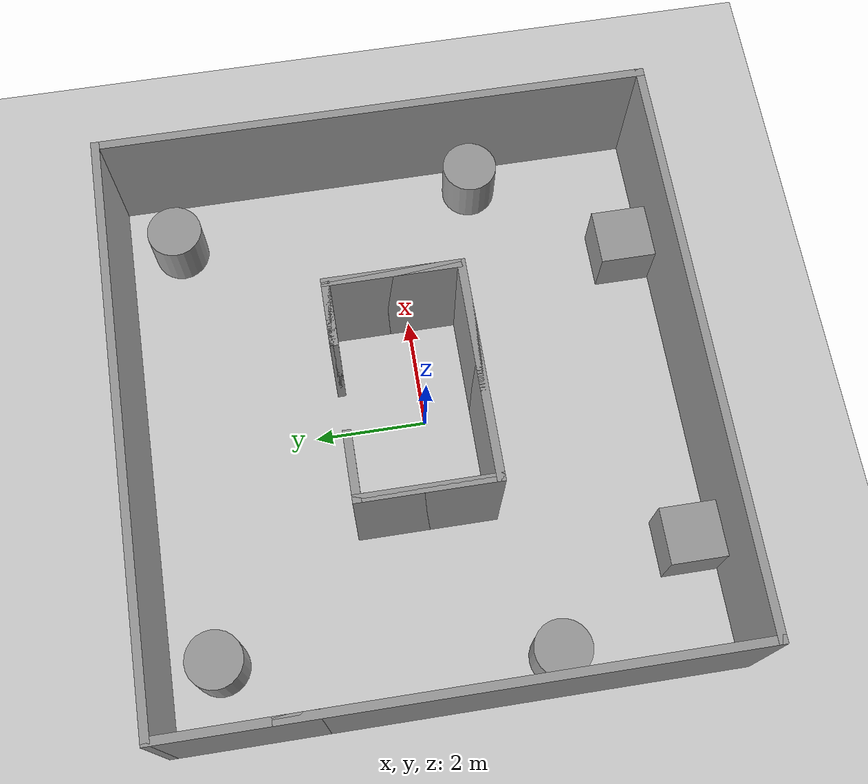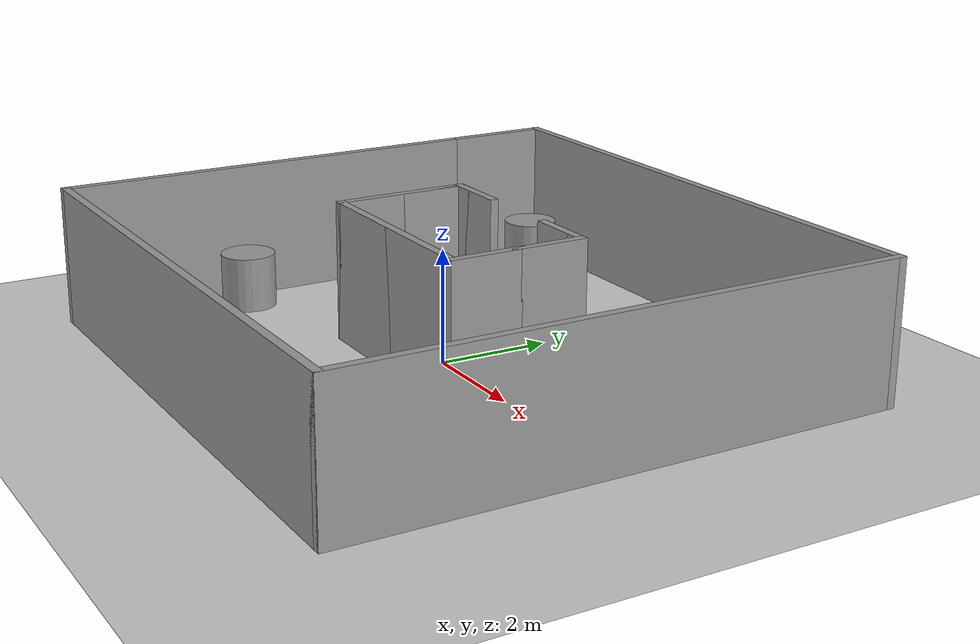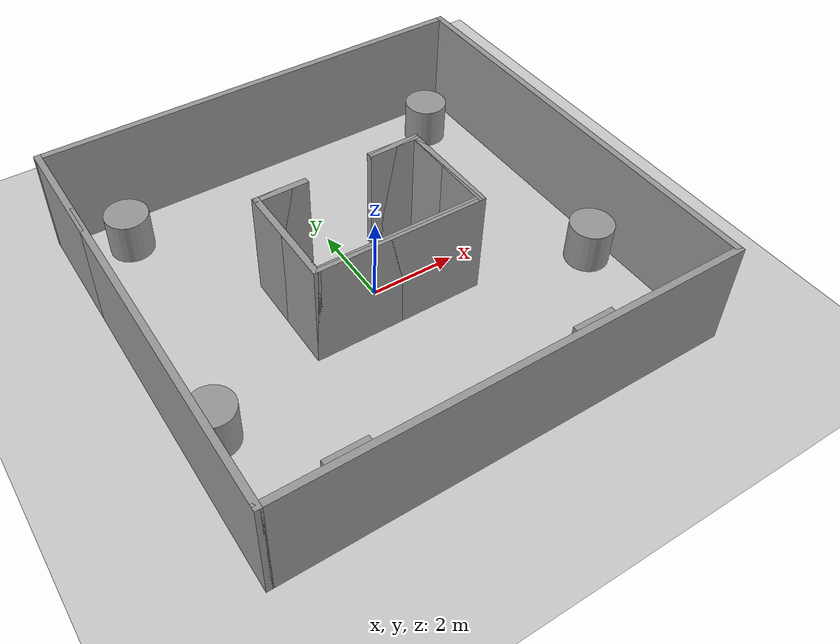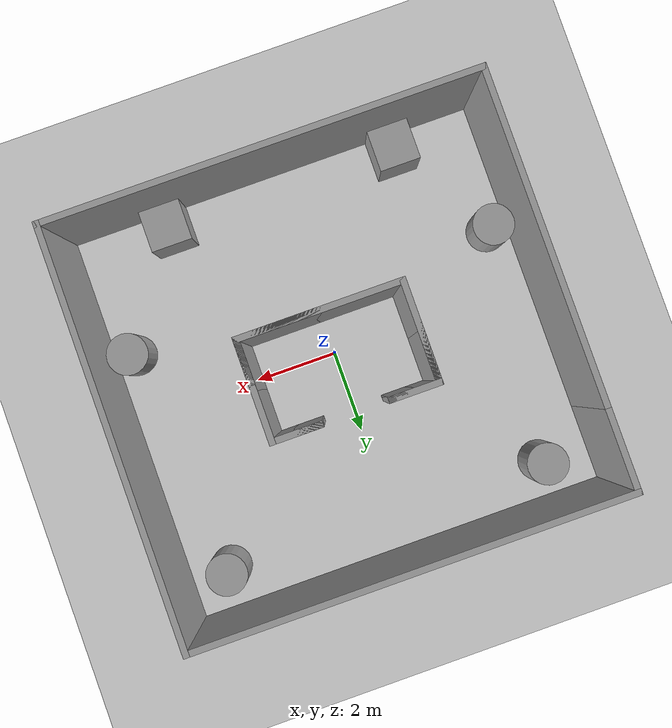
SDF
<sdf version="1.7">
 <world name="default">
  <light name="sun" type="directional">
   <pose>0 0 10 0 -0 0</pose>
   <diffuse>0.8 0.8 0.8 1</diffuse>
   <specular>0.2 0.2 0.2 1</specular>
   <attenuation>
    <range>1000</range>
    <constant>0.9</constant>
    <linear>0.01</linear>
    <quadratic>0.001</quadratic>
   </attenuation>
   <direction>-0.5 0.1 -0.9</direction>
   <spot><inner_angle>0</inner_angle><outer_angle>0</outer_angle><falloff>0</falloff></spot>
  </light>
  <model name="ground_plane">
   <static>1</static>
   <link name="link">
    <collision name="collision">
     <geometry><plane><normal>0 0 1</normal><size>100 100</size></plane></geometry>
     <surface>
      <contact><collide_bitmask>65535</collide_bitmask></contact>
      <friction><ode><mu>100</mu><mu2>50</mu2></ode></friction>
     </surface>
    </collision>
    <visual name="visual">
     <cast_shadows>0</cast_shadows>
     <geometry><plane><normal>0 0 1</normal><size>100 100</size></plane></geometry>
     <material>
      <script><uri>file://media/materials/scripts/gazebo.material</uri><name>Gazebo/Grey</name></script>
     </material>
    </visual>
   </link>
  </model>
  <gravity>0 0 -9.8</gravity>
  <magnetic_field>6e-06 2.3e-05 -4.2e-05</magnetic_field>
  <atmosphere type="adiabatic"/>
  <physics type="ode">
   <max_step_size>0.001</max_step_size>
   <real_time_factor>1</real_time_factor>
   <real_time_update_rate>1000</real_time_update_rate>
  </physics>
  <scene><ambient>0.4 0.4 0.4 1</ambient><background>0.7 0.7 0.7 1</background><shadows>1</shadows></scene>
  <spherical_coordinates>
   <surface_model>EARTH_WGS84</surface_model>
   <latitude_deg>0</latitude_deg>
   <longitude_deg>0</longitude_deg>
   <elevation>0</elevation>
   <heading_deg>0</heading_deg>
  </spherical_coordinates>
  <model name="multi10x10">
   <pose>0.02298 0.181963 0 0 -0 0</pose>
   <link name="Wall_1">
    <collision name="Wall_1_Collision">
     <geometry><box><size>8 0.15 2.5</size></box></geometry>
     <pose>0 0 1.25 0 -0 0</pose>
    </collision>
    <visual name="Wall_1_Visual">
     <pose>0 0 1.25 0 -0 0</pose>
     <geometry><box><size>8 0.15 2.5</size></box></geometry>
     <material>
      <script><uri>file://media/materials/scripts/gazebo.material</uri><name>Gazebo/Grey</name></script>
      <ambient>1 1 1 1</ambient>
     </material>
     <meta><layer>0</layer></meta>
    </visual>
    <pose>-5.175 -1 0 0 -0 -1.5708</pose>
   </link>
   <link name="Wall_2">
    <collision name="Wall_2_Collision">
     <geometry><box><size>10.5 0.15 2.5</size></box></geometry>
     <pose>0 0 1.25 0 -0 0</pose>
    </collision>
    <visual name="Wall_2_Visual">
     <pose>0 0 1.25 0 -0 0</pose>
     <geometry><box><size>10.5 0.15 2.5</size></box></geometry>
     <material>
      <script><uri>file://media/materials/scripts/gazebo.material</uri><name>Gazebo/Grey</name></script>
      <ambient>1 1 1 1</ambient>
     </material>
     <meta><layer>0</layer></meta>
    </visual>
    <pose>-0 -4.925 0 0 -0 0</pose>
   </link>
   <link name="Wall_3">
    <collision name="Wall_3_Collision">
     <geometry><box><size>10 0.15 2.5</size></box></geometry>
     <pose>0 0 1.25 0 -0 0</pose>
    </collision>
    <visual name="Wall_3_Visual">
     <pose>0 0 1.25 0 -0 0</pose>
     <geometry><box><size>10 0.15 2.5</size></box></geometry>
     <material>
      <script><uri>file://media/materials/scripts/gazebo.material</uri><name>Gazebo/Grey</name></script>
      <ambient>1 1 1 1</ambient>
     </material>
     <meta><layer>0</layer></meta>
    </visual>
    <pose>5.175 -0 0 0 -0 1.5708</pose>
   </link>
   <link name="Wall_4">
    <collision name="Wall_4_Collision">
     <geometry><box><size>10.5 0.15 2.5</size></box></geometry>
     <pose>0 0 1.25 0 -0 0</pose>
    </collision>
    <visual name="Wall_4_Visual">
     <pose>0 0 1.25 0 -0 0</pose>
     <geometry><box><size>10.5 0.15 2.5</size></box></geometry>
     <material>
      <script><uri>file://media/materials/scripts/gazebo.material</uri><name>Gazebo/Grey</name></script>
      <ambient>1 1 1 1</ambient>
     </material>
     <meta><layer>0</layer></meta>
    </visual>
    <pose>-0 4.925 0 0 -0 3.14159</pose>
   </link>
   <link name="Wall_5">
    <collision name="Wall_5_Collision">
     <geometry><box><size>2.75 0.15 2.5</size></box></geometry>
     <pose>0 0 1.25 0 -0 0</pose>
    </collision>
    <visual name="Wall_5_Visual">
     <pose>0 0 1.25 0 -0 0</pose>
     <geometry><box><size>2.75 0.15 2.5</size></box></geometry>
     <material>
      <script><uri>file://media/materials/scripts/gazebo.material</uri><name>Gazebo/Grey</name></script>
      <ambient>1 1 1 1</ambient>
     </material>
     <meta><layer>0</layer></meta>
    </visual>
    <pose>-5.175 3.625 0 0 -0 -1.5708</pose>
   </link>
   <static>1</static>
  </model>
  <model name="C_model">
   <pose>0.01602 0.2591 0 0 -0 0</pose>
   <link name="Wall_17">
    <collision name="Wall_17_Collision">
     <geometry><box><size>2.5 0.15 2.5</size></box></geometry>
     <pose>0 0 1.25 0 -0 0</pose>
    </collision>
    <visual name="Wall_17_Visual">
     <pose>0 0 1.25 0 -0 0</pose>
     <geometry><box><size>2.5 0.15 2.5</size></box></geometry>
     <material>
      <script><uri>file://media/materials/scripts/gazebo.material</uri><name>Gazebo/Grey</name></script>
      <ambient>1 1 1 1</ambient>
     </material>
     <meta><layer>0</layer></meta>
    </visual>
    <pose>-1.925 0 0 0 -0 -1.5708</pose>
   </link>
   <link name="Wall_18">
    <collision name="Wall_18_Collision">
     <geometry><box><size>4 0.15 2.5</size></box></geometry>
     <pose>0 0 1.25 0 -0 0</pose>
    </collision>
    <visual name="Wall_18_Visual">
     <pose>0 0 1.25 0 -0 0</pose>
     <geometry><box><size>4 0.15 2.5</size></box></geometry>
     <material>
      <script><uri>file://media/materials/scripts/gazebo.material</uri><name>Gazebo/Grey</name></script>
      <ambient>1 1 1 1</ambient>
     </material>
     <meta><layer>0</layer></meta>
    </visual>
    <pose>-0 -1.175 0 0 -0 0</pose>
   </link>
   <link name="Wall_19">
    <collision name="Wall_19_Collision">
     <geometry><box><size>2.5 0.15 2.5</size></box></geometry>
     <pose>0 0 1.25 0 -0 0</pose>
    </collision>
    <visual name="Wall_19_Visual">
     <pose>0 0 1.25 0 -0 0</pose>
     <geometry><box><size>2.5 0.15 2.5</size></box></geometry>
     <material>
      <script><uri>file://media/materials/scripts/gazebo.material</uri><name>Gazebo/Grey</name></script>
      <ambient>1 1 1 1</ambient>
     </material>
     <meta><layer>0</layer></meta>
    </visual>
    <pose>1.925 0 0 0 -0 1.5708</pose>
   </link>
   <link name="Wall_20">
    <collision name="Wall_20_Collision">
     <geometry><box><size>1.25 0.15 2.5</size></box></geometry>
     <pose>0 0 1.25 0 -0 0</pose>
    </collision>
    <visual name="Wall_20_Visual">
     <pose>0 0 1.25 0 -0 0</pose>
     <geometry><box><size>1.25 0.15 2.5</size></box></geometry>
     <material>
      <script><uri>file://media/materials/scripts/gazebo.material</uri><name>Gazebo/Grey</name></script>
      <ambient>1 1 1 1</ambient>
     </material>
     <meta><layer>0</layer></meta>
    </visual>
    <pose>1.375 1.175 0 0 -0 3.14159</pose>
   </link>
   <link name="Wall_21">
    <collision name="Wall_21_Collision">
     <geometry><box><size>1.25 0.15 2.5</size></box></geometry>
     <pose>0 0 1.25 0 -0 0</pose>
    </collision>
    <visual name="Wall_21_Visual">
     <pose>0 0 1.25 0 -0 0</pose>
     <geometry><box><size>1.25 0.15 2.5</size></box></geometry>
     <material>
      <script><uri>file://media/materials/scripts/gazebo.material</uri><name>Gazebo/Grey</name></script>
      <ambient>1 1 1 1</ambient>
     </material>
     <meta><layer>0</layer></meta>
    </visual>
    <pose>1.375 1.175 0 0 -0 0</pose>
   </link>
   <link name="Wall_22">
    <collision name="Wall_22_Collision">
     <geometry><box><size>2.5 0.15 2.5</size></box></geometry>
     <pose>0 0 1.25 0 -0 0</pose>
    </collision>
    <visual name="Wall_22_Visual">
     <pose>0 0 1.25 0 -0 0</pose>
     <geometry><box><size>2.5 0.15 2.5</size></box></geometry>
     <material>
      <script><uri>file://media/materials/scripts/gazebo.material</uri><name>Gazebo/Grey</name></script>
      <ambient>1 1 1 1</ambient>
     </material>
     <meta><layer>0</layer></meta>
    </visual>
    <pose>1.925 0 0 0 -0 -1.5708</pose>
   </link>
   <link name="Wall_23">
    <collision name="Wall_23_Collision">
     <geometry><box><size>4 0.15 2.5</size></box></geometry>
     <pose>0 0 1.25 0 -0 0</pose>
    </collision>
    <visual name="Wall_23_Visual">
     <pose>0 0 1.25 0 -0 0</pose>
     <geometry><box><size>4 0.15 2.5</size></box></geometry>
     <material>
      <script><uri>file://media/materials/scripts/gazebo.material</uri><name>Gazebo/Grey</name></script>
      <ambient>1 1 1 1</ambient>
     </material>
     <meta><layer>0</layer></meta>
    </visual>
    <pose>-0 -1.175 0 0 -0 3.14159</pose>
   </link>
   <link name="Wall_24">
    <collision name="Wall_24_Collision">
     <geometry><box><size>2.5 0.15 2.5</size></box></geometry>
     <pose>0 0 1.25 0 -0 0</pose>
    </collision>
    <visual name="Wall_24_Visual">
     <pose>0 0 1.25 0 -0 0</pose>
     <geometry><box><size>2.5 0.15 2.5</size></box></geometry>
     <material>
      <script><uri>file://media/materials/scripts/gazebo.material</uri><name>Gazebo/Grey</name></script>
      <ambient>1 1 1 1</ambient>
     </material>
     <meta><layer>0</layer></meta>
    </visual>
    <pose>-1.925 0 0 0 -0 1.5708</pose>
   </link>
   <link name="Wall_25">
    <collision name="Wall_25_Collision">
     <geometry><box><size>1.25 0.15 2.5</size></box></geometry>
     <pose>0 0 1.25 0 -0 0</pose>
    </collision>
    <visual name="Wall_25_Visual">
     <pose>0 0 1.25 0 -0 0</pose>
     <geometry><box><size>1.25 0.15 2.5</size></box></geometry>
     <material>
      <script><uri>file://media/materials/scripts/gazebo.material</uri><name>Gazebo/Grey</name></script>
      <ambient>1 1 1 1</ambient>
     </material>
     <meta><layer>0</layer></meta>
    </visual>
    <pose>-1.375 1.175 0 0 -0 0</pose>
   </link>
   <link name="Wall_26">
    <collision name="Wall_26_Collision">
     <geometry><box><size>1.25 0.15 2.5</size></box></geometry>
     <pose>0 0 1.25 0 -0 0</pose>
    </collision>
    <visual name="Wall_26_Visual">
     <pose>0 0 1.25 0 -0 0</pose>
     <geometry><box><size>1.25 0.15 2.5</size></box></geometry>
     <material>
      <script><uri>file://media/materials/scripts/gazebo.material</uri><name>Gazebo/Grey</name></script>
      <ambient>1 1 1 1</ambient>
     </material>
     <meta><layer>0</layer></meta>
    </visual>
    <pose>-1.375 1.175 0 0 -0 3.14159</pose>
   </link>
   <static>1</static>
  </model>
  <model name="unit_box">
   <pose>-2.96597 -4.15963 0.499995 0 1e-05 0</pose>
   <link name="link">
    <inertial>
     <mass>1</mass>
     <inertia>
      <ixx>0.166667</ixx>
      <ixy>0</ixy>
      <ixz>0</ixz>
      <iyy>0.166667</iyy>
      <iyz>0</iyz>
      <izz>0.166667</izz>
     </inertia>
    </inertial>
    <collision name="collision"><geometry><box><size>1 1 1</size></box></geometry></collision>
    <visual name="visual">
     <geometry><box><size>1 1 1</size></box></geometry>
     <material>
      <script><name>Gazebo/Grey</name><uri>file://media/materials/scripts/gazebo.material</uri></script>
     </material>
    </visual>
   </link>
  </model>
  <model name="unit_box_0">
   <pose>2.77095 -4.15808 0.499995 1e-05 -0 0</pose>
   <link name="link">
    <inertial>
     <mass>1</mass>
     <inertia>
      <ixx>0.166667</ixx>
      <ixy>0</ixy>
      <ixz>0</ixz>
      <iyy>0.166667</iyy>
      <iyz>0</iyz>
      <izz>0.166667</izz>
     </inertia>
    </inertial>
    <collision name="collision"><geometry><box><size>1 1 1</size></box></geometry></collision>
    <visual name="visual">
     <geometry><box><size>1 1 1</size></box></geometry>
     <material>
      <script><name>Gazebo/Grey</name><uri>file://media/materials/scripts/gazebo.material</uri></script>
     </material>
    </visual>
   </link>
  </model>
  <model name="unit_cylinder">
   <pose>4.61279 -1.57926 0.499998 3e-06 -3e-06 0</pose>
   <link name="link">
    <inertial>
     <mass>1</mass>
     <inertia><ixx>0.145833</ixx><ixy>0</ixy><ixz>0</ixz><iyy>0.145833</iyy><iyz>0</iyz><izz>0.125</izz></inertia>
    </inertial>
    <collision name="collision">
     <geometry><cylinder><radius>0.5</radius><length>1</length></cylinder></geometry>
    </collision>
    <visual name="visual">
     <geometry><cylinder><radius>0.5</radius><length>1</length></cylinder></geometry>
     <material>
      <script><name>Gazebo/Grey</name><uri>file://media/materials/scripts/gazebo.material</uri></script>
     </material>
    </visual>
   </link>
  </model>
  <model name="unit_cylinder_0">
   <pose>-4.55724 -1.58705 0.499992 -3e-06 3e-06 0</pose>
   <link name="link">
    <inertial>
     <mass>1</mass>
     <inertia><ixx>0.145833</ixx><ixy>0</ixy><ixz>0</ixz><iyy>0.145833</iyy><iyz>0</iyz><izz>0.125</izz></inertia>
    </inertial>
    <collision name="collision">
     <geometry><cylinder><radius>0.5</radius><length>1</length></cylinder></geometry>
    </collision>
    <visual name="visual">
     <geometry><cylinder><radius>0.5</radius><length>1</length></cylinder></geometry>
     <material>
      <script><name>Gazebo/Grey</name><uri>file://media/materials/scripts/gazebo.material</uri></script>
     </material>
    </visual>
   </link>
  </model>
  <model name="unit_cylinder_1">
   <pose>-3.84457 4.15294 0.499993 -3e-06 -4e-06 -0</pose>
   <link name="link">
    <inertial>
     <mass>1</mass>
     <inertia><ixx>0.145833</ixx><ixy>0</ixy><ixz>0</ixz><iyy>0.145833</iyy><iyz>0</iyz><izz>0.125</izz></inertia>
    </inertial>
    <collision name="collision">
     <geometry><cylinder><radius>0.5</radius><length>1</length></cylinder></geometry>
    </collision>
    <visual name="visual">
     <geometry><cylinder><radius>0.5</radius><length>1</length></cylinder></geometry>
     <material>
      <script><name>Gazebo/Grey</name><uri>file://media/materials/scripts/gazebo.material</uri></script>
     </material>
    </visual>
   </link>
  </model>
  <model name="unit_cylinder_2">
   <pose>4.11328 4.06847 0.499997 3e-06 4e-06 -0</pose>
   <link name="link">
    <inertial>
     <mass>1</mass>
     <inertia><ixx>0.145833</ixx><ixy>0</ixy><ixz>0</ixz><iyy>0.145833</iyy><iyz>0</iyz><izz>0.125</izz></inertia>
    </inertial>
    <collision name="collision">
     <geometry><cylinder><radius>0.5</radius><length>1</length></cylinder></geometry>
    </collision>
    <visual name="visual">
     <geometry><cylinder><radius>0.5</radius><length>1</length></cylinder></geometry>
     <material>
      <script><name>Gazebo/Grey</name><uri>file://media/materials/scripts/gazebo.material</uri></script>
     </material>
    </visual>
   </link>
  </model>
 </world>
</sdf>
